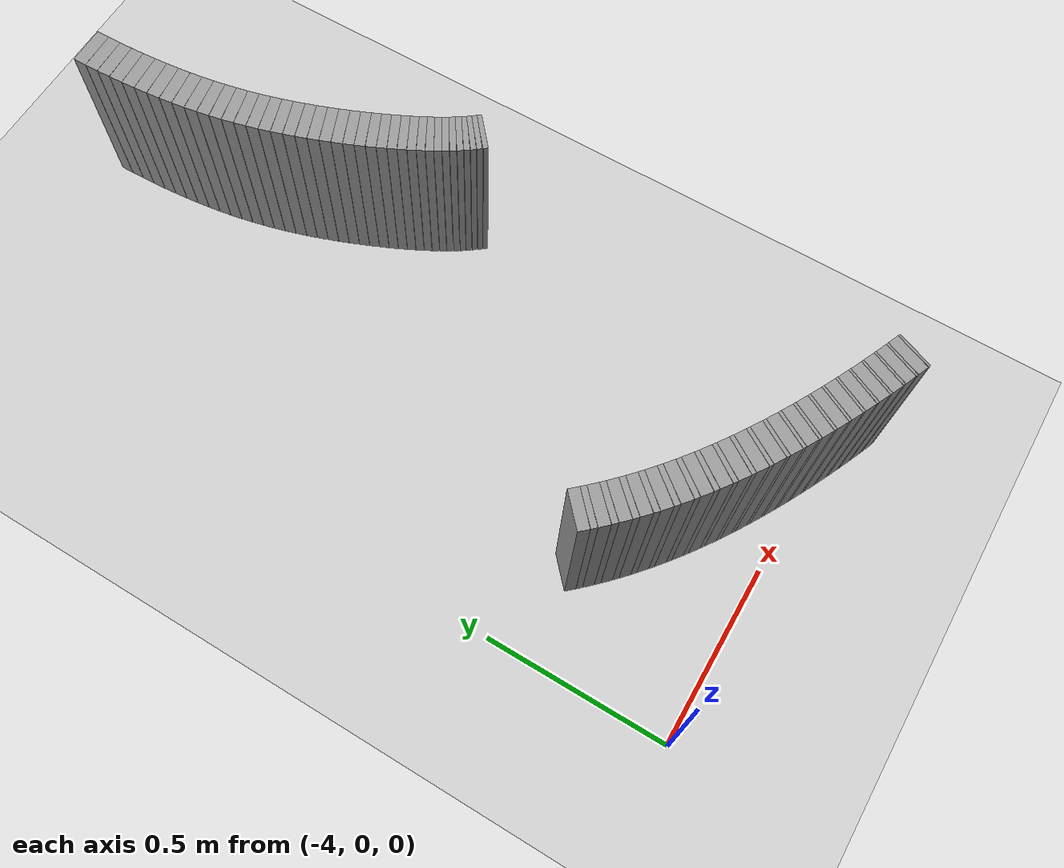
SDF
<sdf version="1.6">
 <world name="default">
  <include><uri>model://ground_plane</uri></include>
  <include><uri>model://sun</uri></include>
  <model name="wall_940_outward">
   <static>true</static>
   <link name="link">
    <collision name="collision">
     <geometry><box><size>0.035713065834833004 0.1 0.5</size></box></geometry>
    </collision>
    <visual name="visual">
     <geometry><box><size>0.035713065834833004 0.1 0.5</size></box></geometry>
     <material>
      <script><uri>file://media/materials/scripts/gazebo.material</uri><name>Gazebo/Gray</name></script>
     </material>
    </visual>
   </link>
   <pose>-3.3174626477168623 2.0877859052706045 0.25 0 0 -1.5594728835504077</pose>
  </model>
  <model name="wall_941_outward">
   <static>true</static>
   <link name="link">
    <collision name="collision">
     <geometry><box><size>0.036240384552037964 0.1 0.5</size></box></geometry>
    </collision>
    <visual name="visual">
     <geometry><box><size>0.036240384552037964 0.1 0.5</size></box></geometry>
     <material>
      <script><uri>file://media/materials/scripts/gazebo.material</uri><name>Gazebo/Gray</name></script>
     </material>
    </visual>
   </link>
   <pose>-3.3167921509803397 2.051816377350156 0.25 0 0 -1.5449491524862389</pose>
  </model>
  <model name="wall_942_outward">
   <static>true</static>
   <link name="link">
    <collision name="collision">
     <geometry><box><size>0.03648174420846806 0.1 0.5</size></box></geometry>
    </collision>
    <visual name="visual">
     <geometry><box><size>0.03648174420846806 0.1 0.5</size></box></geometry>
     <material>
      <script><uri>file://media/materials/scripts/gazebo.material</uri><name>Gazebo/Gray</name></script>
     </material>
    </visual>
   </link>
   <pose>-3.315585657191167 2.0154763085055896 0.25 0 0 -1.5303162550494724</pose>
  </model>
  <model name="wall_943_outward">
   <static>true</static>
   <link name="link">
    <collision name="collision">
     <geometry><box><size>0.036471467087948656 0.1 0.5</size></box></geometry>
    </collision>
    <visual name="visual">
     <geometry><box><size>0.036471467087948656 0.1 0.5</size></box></geometry>
     <material>
      <script><uri>file://media/materials/scripts/gazebo.material</uri><name>Gazebo/Gray</name></script>
     </material>
    </visual>
   </link>
   <pose>-3.313835239882984 1.9790427608642829 0.25 0 0 -1.5152598901087408</pose>
  </model>
  <model name="wall_944_outward">
   <static>true</static>
   <link name="link">
    <collision name="collision">
     <geometry><box><size>0.036240482483664904 0.1 0.5</size></box></geometry>
    </collision>
    <visual name="visual">
     <geometry><box><size>0.036240482483664904 0.1 0.5</size></box></geometry>
     <material>
      <script><uri>file://media/materials/scripts/gazebo.material</uri><name>Gazebo/Gray</name></script>
     </material>
    </visual>
   </link>
   <pose>-3.311531879319788 1.9427609585711425 0.25 0 0 -1.4994822398474885</pose>
  </model>
  <model name="wall_945_outward">
   <static>true</static>
   <link name="link">
    <collision name="collision">
     <geometry><box><size>0.03584313340435756 0.1 0.5</size></box></geometry>
    </collision>
    <visual name="visual">
     <geometry><box><size>0.03584313340435756 0.1 0.5</size></box></geometry>
     <material>
      <script><uri>file://media/materials/scripts/gazebo.material</uri><name>Gazebo/Gray</name></script>
     </material>
    </visual>
   </link>
   <pose>-3.3086660338647254 1.9068345247106406 0.25 0 0 -1.4828159948555926</pose>
  </model>
  <model name="wall_946_outward">
   <static>true</static>
   <link name="link">
    <collision name="collision">
     <geometry><box><size>0.035319171911052764 0.1 0.5</size></box></geometry>
    </collision>
    <visual name="visual">
     <geometry><box><size>0.035319171911052764 0.1 0.5</size></box></geometry>
     <material>
      <script><uri>file://media/materials/scripts/gazebo.material</uri><name>Gazebo/Gray</name></script>
     </material>
    </visual>
   </link>
   <pose>-3.3052296709426283 1.8714210891864154 0.25 0 0 -1.465181372135872</pose>
  </model>
  <model name="wall_947_outward">
   <static>true</static>
   <link name="link">
    <collision name="collision">
     <geometry><box><size>0.03472018694851937 0.1 0.5</size></box></geometry>
    </collision>
    <visual name="visual">
     <geometry><box><size>0.03472018694851937 0.1 0.5</size></box></geometry>
     <material>
      <script><uri>file://media/materials/scripts/gazebo.material</uri><name>Gazebo/Gray</name></script>
     </material>
    </visual>
   </link>
   <pose>-3.301216863108901 1.8366336050347665 0.25 0 0 -1.4465631030107553</pose>
  </model>
  <model name="wall_948_outward">
   <static>true</static>
   <link name="link">
    <collision name="collision">
     <geometry><box><size>0.0340914844458624 0.1 0.5</size></box></geometry>
    </collision>
    <visual name="visual">
     <geometry><box><size>0.0340914844458624 0.1 0.5</size></box></geometry>
     <material>
      <script><uri>file://media/materials/scripts/gazebo.material</uri><name>Gazebo/Gray</name></script>
     </material>
    </visual>
   </link>
   <pose>-3.2966242263376024 1.802537317998369 0.25 0 0 -1.4270709495405125</pose>
  </model>
  <model name="wall_949_outward">
   <static>true</static>
   <link name="link">
    <collision name="collision">
     <geometry><box><size>0.033474735506293256 0.1 0.5</size></box></geometry>
    </collision>
    <visual name="visual">
     <geometry><box><size>0.033474735506293256 0.1 0.5</size></box></geometry>
     <material>
      <script><uri>file://media/materials/scripts/gazebo.material</uri><name>Gazebo/Gray</name></script>
     </material>
    </visual>
   </link>
   <pose>-3.2914508808479477 1.7691544138967483 0.25 0 0 -1.40684323499818</pose>
  </model>
  <model name="wall_950_outward">
   <static>true</static>
   <link name="link">
    <collision name="collision">
     <geometry><box><size>0.032899775087950944 0.1 0.5</size></box></geometry>
    </collision>
    <visual name="visual">
     <geometry><box><size>0.032899775087950944 0.1 0.5</size></box></geometry>
     <material>
      <script><uri>file://media/materials/scripts/gazebo.material</uri><name>Gazebo/Gray</name></script>
     </material>
    </visual>
   </link>
   <pose>-3.2856984577875306 1.7364713084169656 0.25 0 0 -1.3861267222075435</pose>
  </model>
  <model name="wall_951_outward">
   <static>true</static>
   <link name="link">
    <collision name="collision">
     <geometry><box><size>0.032382602012446984 0.1 0.5</size></box></geometry>
    </collision>
    <visual name="visual">
     <geometry><box><size>0.032382602012446984 0.1 0.5</size></box></geometry>
     <material>
      <script><uri>file://media/materials/scripts/gazebo.material</uri><name>Gazebo/Gray</name></script>
     </material>
    </visual>
   </link>
   <pose>-3.2793716304655267 1.7044509828885444 0.25 0 0 -1.3651495139815777</pose>
  </model>
  <model name="wall_952_outward">
   <static>true</static>
   <link name="link">
    <collision name="collision">
     <geometry><box><size>0.03193393672221484 0.1 0.5</size></box></geometry>
    </collision>
    <visual name="visual">
     <geometry><box><size>0.03193393672221484 0.1 0.5</size></box></geometry>
     <material>
      <script><uri>file://media/materials/scripts/gazebo.material</uri><name>Gazebo/Gray</name></script>
     </material>
    </visual>
   </link>
   <pose>-3.272478087237877 1.6730420697771171 0.25 0 0 -1.3441935991269947</pose>
  </model>
  <model name="wall_953_outward">
   <static>true</static>
   <link name="link">
    <collision name="collision">
     <geometry><box><size>0.031559599935816016 0.1 0.5</size></box></geometry>
    </collision>
    <visual name="visual">
     <geometry><box><size>0.031559599935816016 0.1 0.5</size></box></geometry>
     <material>
      <script><uri>file://media/materials/scripts/gazebo.material</uri><name>Gazebo/Gray</name></script>
     </material>
    </visual>
   </link>
   <pose>-3.2650282712751952 1.642183526168773 0.25 0 0 -1.323505947292422</pose>
  </model>
  <model name="wall_954_outward">
   <static>true</static>
   <link name="link">
    <collision name="collision">
     <geometry><box><size>0.031248081231022243 0.1 0.5</size></box></geometry>
    </collision>
    <visual name="visual">
     <geometry><box><size>0.031248081231022243 0.1 0.5</size></box></geometry>
     <material>
      <script><uri>file://media/materials/scripts/gazebo.material</uri><name>Gazebo/Gray</name></script>
     </material>
    </visual>
   </link>
   <pose>-3.2570370566374467 1.6118150931988229 0.25 0 0 -1.303368852006866</pose>
  </model>
  <model name="wall_955_outward">
   <static>true</static>
   <link name="link">
    <collision name="collision">
     <geometry><box><size>0.03097180843032488 0.1 0.5</size></box></geometry>
    </collision>
    <visual name="visual">
     <geometry><box><size>0.03097180843032488 0.1 0.5</size></box></geometry>
     <material>
      <script><uri>file://media/materials/scripts/gazebo.material</uri><name>Gazebo/Gray</name></script>
     </material>
    </visual>
   </link>
   <pose>-3.2485272182489884 1.5818931909243639 0.25 0 0 -1.2839663061830866</pose>
  </model>
  <model name="wall_956_outward">
   <static>true</static>
   <link name="link">
    <collision name="collision">
     <geometry><box><size>0.03071224803492537 0.1 0.5</size></box></geometry>
    </collision>
    <visual name="visual">
     <geometry><box><size>0.03071224803492537 0.1 0.5</size></box></geometry>
     <material>
      <script><uri>file://media/materials/scripts/gazebo.material</uri><name>Gazebo/Gray</name></script>
     </material>
    </visual>
   </link>
   <pose>-3.2395297332932964 1.552394131675651 0.25 0 0 -1.2654563636468368</pose>
  </model>
  <model name="wall_957_outward">
   <static>true</static>
   <link name="link">
    <collision name="collision">
     <geometry><box><size>0.030441875940034595 0.1 0.5</size></box></geometry>
    </collision>
    <visual name="visual">
     <geometry><box><size>0.030441875940034595 0.1 0.5</size></box></geometry>
     <material>
      <script><uri>file://media/materials/scripts/gazebo.material</uri><name>Gazebo/Gray</name></script>
     </material>
    </visual>
   </link>
   <pose>-3.2300840449507335 1.523313830632064 0.25 0 0 -1.2479315242405933</pose>
  </model>
  <model name="wall_958_outward">
   <static>true</static>
   <link name="link">
    <collision name="collision">
     <geometry><box><size>0.030136966358173627 0.1 0.5</size></box></geometry>
    </collision>
    <visual name="visual">
     <geometry><box><size>0.030136966358173627 0.1 0.5</size></box></geometry>
     <material>
      <script><uri>file://media/materials/scripts/gazebo.material</uri><name>Gazebo/Gray</name></script>
     </material>
    </visual>
   </link>
   <pose>-3.220238490580973 1.4946703040079081 0.25 0 0 -1.231426985620121</pose>
  </model>
  <model name="wall_959_outward">
   <static>true</static>
   <link name="link">
    <collision name="collision">
     <geometry><box><size>0.029776355896254415 0.1 0.5</size></box></geometry>
    </collision>
    <visual name="visual">
     <geometry><box><size>0.029776355896254415 0.1 0.5</size></box></geometry>
     <material>
      <script><uri>file://media/materials/scripts/gazebo.material</uri><name>Gazebo/Gray</name></script>
     </material>
    </visual>
   </link>
   <pose>-3.2100490122727763 1.4665007794201685 0.25 0 0 -1.2159176346132907</pose>
  </model>
  <model name="wall_960_outward">
   <static>true</static>
   <link name="link">
    <collision name="collision">
     <geometry><box><size>0.029334510016836724 0.1 0.5</size></box></geometry>
    </collision>
    <visual name="visual">
     <geometry><box><size>0.029334510016836724 0.1 0.5</size></box></geometry>
     <material>
      <script><uri>file://media/materials/scripts/gazebo.material</uri><name>Gazebo/Gray</name></script>
     </material>
    </visual>
   </link>
   <pose>-3.199579126674297 1.438862786509949 0.25 0 0 -1.2013311203970907</pose>
  </model>
  <model name="wall_961_outward">
   <static>true</static>
   <link name="link">
    <collision name="collision">
     <geometry><box><size>0.02879815860608574 0.1 0.5</size></box></geometry>
    </collision>
    <visual name="visual">
     <geometry><box><size>0.02879815860608574 0.1 0.5</size></box></geometry>
     <material>
      <script><uri>file://media/materials/scripts/gazebo.material</uri><name>Gazebo/Gray</name></script>
     </material>
    </visual>
   </link>
   <pose>-3.188897659262123 1.4118309963127258 0.25 0 0 -1.1875065008744743</pose>
  </model>
  <model name="wall_962_outward">
   <static>true</static>
   <link name="link">
    <collision name="collision">
     <geometry><box><size>0.028161359366468842 0.1 0.5</size></box></geometry>
    </collision>
    <visual name="visual">
     <geometry><box><size>0.028161359366468842 0.1 0.5</size></box></geometry>
     <material>
      <script><uri>file://media/materials/scripts/gazebo.material</uri><name>Gazebo/Gray</name></script>
     </material>
    </visual>
   </link>
   <pose>-3.178074744140125 1.3854885264062482 0.25 0 0 -1.1742816825608118</pose>
  </model>
  <model name="wall_963_outward">
   <static>true</static>
   <link name="link">
    <collision name="collision">
     <geometry><box><size>0.02741608126889017 0.1 0.5</size></box></geometry>
    </collision>
    <visual name="visual">
     <geometry><box><size>0.02741608126889017 0.1 0.5</size></box></geometry>
     <material>
      <script><uri>file://media/materials/scripts/gazebo.material</uri><name>Gazebo/Gray</name></script>
     </material>
    </visual>
   </link>
   <pose>-3.167180487554563 1.3599249535297901 0.25 0 0 -1.1614274762368282</pose>
  </model>
  <model name="wall_964_outward">
   <static>true</static>
   <link name="link">
    <collision name="collision">
     <geometry><box><size>0.026570431074820693 0.1 0.5</size></box></geometry>
    </collision>
    <visual name="visual">
     <geometry><box><size>0.026570431074820693 0.1 0.5</size></box></geometry>
     <material>
      <script><uri>file://media/materials/scripts/gazebo.material</uri><name>Gazebo/Gray</name></script>
     </material>
    </visual>
   </link>
   <pose>-3.1562816847487234 1.3352303694517316 0.25 0 0 -1.1487014404483338</pose>
  </model>
  <model name="wall_965_outward">
   <static>true</static>
   <link name="link">
    <collision name="collision">
     <geometry><box><size>0.025630159137094696 0.1 0.5</size></box></geometry>
    </collision>
    <visual name="visual">
     <geometry><box><size>0.025630159137094696 0.1 0.5</size></box></geometry>
     <material>
      <script><uri>file://media/materials/scripts/gazebo.material</uri><name>Gazebo/Gray</name></script>
     </material>
    </visual>
   </link>
   <pose>-3.1454393043097166 1.3114892644049638 0.25 0 0 -1.1358490882072632</pose>
  </model>
  <model name="wall_966_outward">
   <static>true</static>
   <link name="link">
    <collision name="collision">
     <geometry><box><size>0.02460945156262165 0.1 0.5</size></box></geometry>
    </collision>
    <visual name="visual">
     <geometry><box><size>0.02460945156262165 0.1 0.5</size></box></geometry>
     <material>
      <script><uri>file://media/materials/scripts/gazebo.material</uri><name>Gazebo/Gray</name></script>
     </material>
    </visual>
   </link>
   <pose>-3.1347073458714565 1.2887779896744112 0.25 0 0 -1.1225977344094304</pose>
  </model>
  <model name="wall_967_outward">
   <static>true</static>
   <link name="link">
    <collision name="collision">
     <geometry><box><size>0.023530535063033327 0.1 0.5</size></box></geometry>
    </collision>
    <visual name="visual">
     <geometry><box><size>0.023530535063033327 0.1 0.5</size></box></geometry>
     <material>
      <script><uri>file://media/materials/scripts/gazebo.material</uri><name>Gazebo/Gray</name></script>
     </material>
    </visual>
   </link>
   <pose>-3.1241299544265573 1.2671572723337468 0.25 0 0 -1.108702773150867</pose>
  </model>
  <model name="wall_968_outward">
   <static>true</static>
   <link name="link">
    <collision name="collision">
     <geometry><box><size>0.022404891226846736 0.1 0.5</size></box></geometry>
    </collision>
    <visual name="visual">
     <geometry><box><size>0.022404891226846736 0.1 0.5</size></box></geometry>
     <material>
      <script><uri>file://media/materials/scripts/gazebo.material</uri><name>Gazebo/Gray</name></script>
     </material>
    </visual>
   </link>
   <pose>-3.1137427813015295 1.2466732859478948 0.25 0 0 -1.09392472445585</pose>
  </model>
  <model name="wall_969_outward">
   <static>true</static>
   <link name="link">
    <collision name="collision">
     <geometry><box><size>0.021259767160628343 0.1 0.5</size></box></geometry>
    </collision>
    <visual name="visual">
     <geometry><box><size>0.021259767160628343 0.1 0.5</size></box></geometry>
     <material>
      <script><uri>file://media/materials/scripts/gazebo.material</uri><name>Gazebo/Gray</name></script>
     </material>
    </visual>
   </link>
   <pose>-3.1035721215500973 1.2273554662491586 0.25 0 0 -1.0780204531955895</pose>
  </model>
  <model name="wall_970_outward">
   <static>true</static>
   <link name="link">
    <collision name="collision">
     <geometry><box><size>0.02011119775956737 0.1 0.5</size></box></geometry>
    </collision>
    <visual name="visual">
     <geometry><box><size>0.02011119775956737 0.1 0.5</size></box></geometry>
     <material>
      <script><uri>file://media/materials/scripts/gazebo.material</uri><name>Gazebo/Gray</name></script>
     </material>
    </visual>
   </link>
   <pose>-3.0936347718705353 1.209214168812386 0.25 0 0 -1.0608281377845812</pose>
  </model>
  <model name="wall_971_outward">
   <static>true</static>
   <link name="link">
    <collision name="collision">
     <geometry><box><size>0.01897227497250017 0.1 0.5</size></box></geometry>
    </collision>
    <visual name="visual">
     <geometry><box><size>0.01897227497250017 0.1 0.5</size></box></geometry>
     <material>
      <script><uri>file://media/materials/scripts/gazebo.material</uri><name>Gazebo/Gray</name></script>
     </material>
    </visual>
   </link>
   <pose>-3.083941558943198 1.1922469132556526 0.25 0 0 -1.042137479810792</pose>
  </model>
  <model name="wall_972_outward">
   <static>true</static>
   <link name="link">
    <collision name="collision">
     <geometry><box><size>0.017877207321994864 0.1 0.5</size></box></geometry>
    </collision>
    <visual name="visual">
     <geometry><box><size>0.017877207321994864 0.1 0.5</size></box></geometry>
     <material>
      <script><uri>file://media/materials/scripts/gazebo.material</uri><name>Gazebo/Gray</name></script>
     </material>
    </visual>
   </link>
   <pose>-3.074492726656727 1.1764306030110396 0.25 0 0 -1.0218247202342836</pose>
  </model>
  <model name="wall_973_outward">
   <static>true</static>
   <link name="link">
    <collision name="collision">
     <geometry><box><size>0.016836302993160725 0.1 0.5</size></box></geometry>
    </collision>
    <visual name="visual">
     <geometry><box><size>0.016836302993160725 0.1 0.5</size></box></geometry>
     <material>
      <script><uri>file://media/materials/scripts/gazebo.material</uri><name>Gazebo/Gray</name></script>
     </material>
    </visual>
   </link>
   <pose>-3.0652787569163658 1.1617226720178448 0.25 0 0 -0.9998068223284686</pose>
  </model>
  <model name="wall_974_outward">
   <static>true</static>
   <link name="link">
    <collision name="collision">
     <geometry><box><size>0.015868582134120686 0.1 0.5</size></box></geometry>
    </collision>
    <visual name="visual">
     <geometry><box><size>0.015868582134120686 0.1 0.5</size></box></geometry>
     <material>
      <script><uri>file://media/materials/scripts/gazebo.material</uri><name>Gazebo/Gray</name></script>
     </material>
    </visual>
   </link>
   <pose>-3.05628312319231 1.148068255530212 0.25 0 0 -0.9759973334895712</pose>
  </model>
  <model name="wall_975_outward">
   <static>true</static>
   <link name="link">
    <collision name="collision">
     <geometry><box><size>0.015005764908275952 0.1 0.5</size></box></geometry>
    </collision>
    <visual name="visual">
     <geometry><box><size>0.015005764908275952 0.1 0.5</size></box></geometry>
     <material>
      <script><uri>file://media/materials/scripts/gazebo.material</uri><name>Gazebo/Gray</name></script>
     </material>
    </visual>
   </link>
   <pose>-3.0474753289073684 1.1353918966603032 0.25 0 0 -0.9503971779786238</pose>
  </model>
  <model name="wall_976_outward">
   <static>true</static>
   <link name="link">
    <collision name="collision">
     <geometry><box><size>0.01427268370868644 0.1 0.5</size></box></geometry>
    </collision>
    <visual name="visual">
     <geometry><box><size>0.01427268370868644 0.1 0.5</size></box></geometry>
     <material>
      <script><uri>file://media/materials/scripts/gazebo.material</uri><name>Gazebo/Gray</name></script>
     </material>
    </visual>
   </link>
   <pose>-3.038807515972149 1.1235963084948426 0.25 0 0 -0.9230614785703035</pose>
  </model>
  <model name="wall_977_outward">
   <static>true</static>
   <link name="link">
    <collision name="collision">
     <geometry><box><size>0.013708412713271943 0.1 0.5</size></box></geometry>
    </collision>
    <visual name="visual">
     <geometry><box><size>0.013708412713271943 0.1 0.5</size></box></geometry>
     <material>
      <script><uri>file://media/materials/scripts/gazebo.material</uri><name>Gazebo/Gray</name></script>
     </material>
    </visual>
   </link>
   <pose>-3.0302093564188706 1.1125615416303911 0.25 0 0 -0.8941045089233013</pose>
  </model>
  <model name="wall_978_outward">
   <static>true</static>
   <link name="link">
    <collision name="collision">
     <geometry><box><size>0.013349824187017372 0.1 0.5</size></box></geometry>
    </collision>
    <visual name="visual">
     <geometry><box><size>0.013349824187017372 0.1 0.5</size></box></geometry>
     <material>
      <script><uri>file://media/materials/scripts/gazebo.material</uri><name>Gazebo/Gray</name></script>
     </material>
    </visual>
   </link>
   <pose>-3.0215812220222484 1.1021427980066199 0.25 0 0 -0.8637599381727994</pose>
  </model>
  <model name="wall_695_inward">
   <static>true</static>
   <link name="link">
    <collision name="collision">
     <geometry><box><size>0.02913267580452557 0.1 0.5</size></box></geometry>
    </collision>
    <visual name="visual">
     <geometry><box><size>0.02913267580452557 0.1 0.5</size></box></geometry>
     <material>
      <script><uri>file://media/materials/scripts/gazebo.material</uri><name>Gazebo/Gray</name></script>
     </material>
    </visual>
   </link>
   <pose>-3.7522217610224273 0.4189421626000307 0.25 0 0 -0.8323109407445168</pose>
  </model>
  <model name="wall_696_inward">
   <static>true</static>
   <link name="link">
    <collision name="collision">
     <geometry><box><size>0.016081182099928527 0.1 0.5</size></box></geometry>
    </collision>
    <visual name="visual">
     <geometry><box><size>0.016081182099928527 0.1 0.5</size></box></geometry>
     <material>
      <script><uri>file://media/materials/scripts/gazebo.material</uri><name>Gazebo/Gray</name></script>
     </material>
    </visual>
   </link>
   <pose>-3.736908567673236 0.4023123984440047 0.25 0 0 -0.8162290654531033</pose>
  </model>
  <model name="wall_697_inward">
   <static>true</static>
   <link name="link">
    <collision name="collision">
     <geometry><box><size>0.0295255971430993 0.1 0.5</size></box></geometry>
    </collision>
    <visual name="visual">
     <geometry><box><size>0.0295255971430993 0.1 0.5</size></box></geometry>
     <material>
      <script><uri>file://media/materials/scripts/gazebo.material</uri><name>Gazebo/Gray</name></script>
     </material>
    </visual>
   </link>
   <pose>-3.721117194324241 0.38586258363551873 0.25 0 0 -0.8001471901617287</pose>
  </model>
  <model name="wall_698_inward">
   <static>true</static>
   <link name="link">
    <collision name="collision">
     <geometry><box><size>0.01620422643035932 0.1 0.5</size></box></geometry>
    </collision>
    <visual name="visual">
     <geometry><box><size>0.01620422643035932 0.1 0.5</size></box></geometry>
     <material>
      <script><uri>file://media/materials/scripts/gazebo.material</uri><name>Gazebo/Gray</name></script>
     </material>
    </visual>
   </link>
   <pose>-3.7050960182831103 0.3695501742359878 0.25 0 0 -0.7839422545048239</pose>
  </model>
  <model name="wall_699_inward">
   <static>true</static>
   <link name="link">
    <collision name="collision">
     <geometry><box><size>0.029966364504027936 0.1 0.5</size></box></geometry>
    </collision>
    <visual name="visual">
     <geometry><box><size>0.029966364504027936 0.1 0.5</size></box></geometry>
     <material>
      <script><uri>file://media/materials/scripts/gazebo.material</uri><name>Gazebo/Gray</name></script>
     </material>
    </visual>
   </link>
   <pose>-3.688578464834276 0.3534235063490619 0.25 0 0 -0.7677373188479262</pose>
  </model>
  <model name="wall_700_inward">
   <static>true</static>
   <link name="link">
    <collision name="collision">
     <geometry><box><size>0.01610559721805691 0.1 0.5</size></box></geometry>
    </collision>
    <visual name="visual">
     <geometry><box><size>0.01610559721805691 0.1 0.5</size></box></geometry>
     <material>
      <script><uri>file://media/materials/scripts/gazebo.material</uri><name>Gazebo/Gray</name></script>
     </material>
    </visual>
   </link>
   <pose>-3.671915123083336 0.3375188480139074 0.25 0 0 -0.7516310252760767</pose>
  </model>
  <model name="wall_701_inward">
   <static>true</static>
   <link name="link">
    <collision name="collision">
     <geometry><box><size>0.03044217845376283 0.1 0.5</size></box></geometry>
    </collision>
    <visual name="visual">
     <geometry><box><size>0.03044217845376283 0.1 0.5</size></box></geometry>
     <material>
      <script><uri>file://media/materials/scripts/gazebo.material</uri><name>Gazebo/Gray</name></script>
     </material>
    </visual>
   </link>
   <pose>-3.6547458261085235 0.32180715490816486 0.25 0 0 -0.7355247317042154</pose>
  </model>
  <model name="wall_702_inward">
   <static>true</static>
   <link name="link">
    <collision name="collision">
     <geometry><box><size>0.015758410521345547 0.1 0.5</size></box></geometry>
    </collision>
    <visual name="visual">
     <geometry><box><size>0.015758410521345547 0.1 0.5</size></box></geometry>
     <material>
      <script><uri>file://media/materials/scripts/gazebo.material</uri><name>Gazebo/Gray</name></script>
     </material>
    </visual>
   </link>
   <pose>-3.6375348626020805 0.3064001254474382 0.25 0 0 -0.7197656689021932</pose>
  </model>
  <model name="wall_703_inward">
   <static>true</static>
   <link name="link">
    <collision name="collision">
     <geometry><box><size>0.03093448144338571 0.1 0.5</size></box></geometry>
    </collision>
    <visual name="visual">
     <geometry><box><size>0.03093448144338571 0.1 0.5</size></box></geometry>
     <material>
      <script><uri>file://media/materials/scripts/gazebo.material</uri><name>Gazebo/Gray</name></script>
     </material>
    </visual>
   </link>
   <pose>-3.6198200331847414 0.2911944984206264 0.25 0 0 -0.7040066061001635</pose>
  </model>
  <model name="wall_704_inward">
   <static>true</static>
   <link name="link">
    <collision name="collision">
     <geometry><box><size>0.015198808346410367 0.1 0.5</size></box></geometry>
    </collision>
    <visual name="visual">
     <geometry><box><size>0.015198808346410367 0.1 0.5</size></box></geometry>
     <material>
      <script><uri>file://media/materials/scripts/gazebo.material</uri><name>Gazebo/Gray</name></script>
     </material>
    </visual>
   </link>
   <pose>-3.6021632768219516 0.2763526013962755 0.25 0 0 -0.6888072125292304</pose>
  </model>
  <model name="wall_705_inward">
   <static>true</static>
   <link name="link">
    <collision name="collision">
     <geometry><box><size>0.03142386912932498 0.1 0.5</size></box></geometry>
    </collision>
    <visual name="visual">
     <geometry><box><size>0.03142386912932498 0.1 0.5</size></box></geometry>
     <material>
      <script><uri>file://media/materials/scripts/gazebo.material</uri><name>Gazebo/Gray</name></script>
     </material>
    </visual>
   </link>
   <pose>-3.5840164273793613 0.2617210332880398 0.25 0 0 -0.6736078189583001</pose>
  </model>
  <model name="wall_706_inward">
   <static>true</static>
   <link name="link">
    <collision name="collision">
     <geometry><box><size>0.014449469737831244 0.1 0.5</size></box></geometry>
    </collision>
    <visual name="visual">
     <geometry><box><size>0.014449469737831244 0.1 0.5</size></box></geometry>
     <material>
      <script><uri>file://media/materials/scripts/gazebo.material</uri><name>Gazebo/Gray</name></script>
     </material>
    </visual>
   </link>
   <pose>-3.566025141019693 0.24749497556962258 0.25 0 0 -0.6591578463625604</pose>
  </model>
  <model name="wall_707_inward">
   <static>true</static>
   <link name="link">
    <collision name="collision">
     <geometry><box><size>0.03188921126198171 0.1 0.5</size></box></geometry>
    </collision>
    <visual name="visual">
     <geometry><box><size>0.03188921126198171 0.1 0.5</size></box></geometry>
     <material>
      <script><uri>file://media/materials/scripts/gazebo.material</uri><name>Gazebo/Gray</name></script>
     </material>
    </visual>
   </link>
   <pose>-3.547569797828902 0.233488027497255 0.25 0 0 -0.6447078737668175</pose>
  </model>
  <model name="wall_708_inward">
   <static>true</static>
   <link name="link">
    <collision name="collision">
     <geometry><box><size>0.013568526644051426 0.1 0.5</size></box></geometry>
    </collision>
    <visual name="visual">
     <geometry><box><size>0.013568526644051426 0.1 0.5</size></box></geometry>
     <material>
      <script><uri>file://media/materials/scripts/gazebo.material</uri><name>Gazebo/Gray</name></script>
     </material>
    </visual>
   </link>
   <pose>-3.529348351818138 0.21990272392418714 0.25 0 0 -0.631138930749524</pose>
  </model>
  <model name="wall_709_inward">
   <static>true</static>
   <link name="link">
    <collision name="collision">
     <geometry><box><size>0.03231043999297099 0.1 0.5</size></box></geometry>
    </collision>
    <visual name="visual">
     <geometry><box><size>0.03231043999297099 0.1 0.5</size></box></geometry>
     <material>
      <script><uri>file://media/materials/scripts/gazebo.material</uri><name>Gazebo/Gray</name></script>
     </material>
    </visual>
   </link>
   <pose>-3.5106998795973636 0.20654479744997123 0.25 0 0 -0.6175699877322394</pose>
  </model>
  <model name="wall_710_inward">
   <static>true</static>
   <link name="link">
    <collision name="collision">
     <geometry><box><size>0.012611878791706298 0.1 0.5</size></box></geometry>
    </collision>
    <visual name="visual">
     <geometry><box><size>0.012611878791706298 0.1 0.5</size></box></geometry>
     <material>
      <script><uri>file://media/materials/scripts/gazebo.material</uri><name>Gazebo/Gray</name></script>
     </material>
    </visual>
   </link>
   <pose>-3.4923419231818147 0.19360366485471345 0.25 0 0 -0.6049577745767761</pose>
  </model>
  <model name="wall_711_inward">
   <static>true</static>
   <link name="link">
    <collision name="collision">
     <geometry><box><size>0.0326657606209998 0.1 0.5</size></box></geometry>
    </collision>
    <visual name="visual">
     <geometry><box><size>0.0326657606209998 0.1 0.5</size></box></geometry>
     <material>
      <script><uri>file://media/materials/scripts/gazebo.material</uri><name>Gazebo/Gray</name></script>
     </material>
    </visual>
   </link>
   <pose>-3.4736048200828824 0.18089851856243938 0.25 0 0 -0.5923455614213048</pose>
  </model>
  <model name="wall_712_inward">
   <static>true</static>
   <link name="link">
    <collision name="collision">
     <geometry><box><size>0.011604085846141893 0.1 0.5</size></box></geometry>
    </collision>
    <visual name="visual">
     <geometry><box><size>0.011604085846141893 0.1 0.5</size></box></geometry>
     <material>
      <script><uri>file://media/materials/scripts/gazebo.material</uri><name>Gazebo/Gray</name></script>
     </material>
    </visual>
   </link>
   <pose>-3.4552036827503176 0.16859647765222702 0.25 0 0 -0.5807412151350535</pose>
  </model>
  <model name="wall_713_inward">
   <static>true</static>
   <link name="link">
    <collision name="collision">
     <geometry><box><size>0.032938440386883365 0.1 0.5</size></box></geometry>
    </collision>
    <visual name="visual">
     <geometry><box><size>0.032938440386883365 0.1 0.5</size></box></geometry>
     <material>
      <script><uri>file://media/materials/scripts/gazebo.material</uri><name>Gazebo/Gray</name></script>
     </material>
    </visual>
   </link>
   <pose>-3.436479730398725 0.15653787484135623 0.25 0 0 -0.569136868848806</pose>
  </model>
  <model name="wall_714_inward">
   <static>true</static>
   <link name="link">
    <collision name="collision">
     <geometry><box><size>0.010644059808922357 0.1 0.5</size></box></geometry>
    </collision>
    <visual name="visual">
     <geometry><box><size>0.010644059808922357 0.1 0.5</size></box></geometry>
     <material>
      <script><uri>file://media/materials/scripts/gazebo.material</uri><name>Gazebo/Gray</name></script>
     </material>
    </visual>
   </link>
   <pose>-3.4180932388083356 0.14484233820615297 0.25 0 0 -0.5584926080413803</pose>
  </model>
  <model name="wall_715_inward">
   <static>true</static>
   <link name="link">
    <collision name="collision">
     <geometry><box><size>0.03311695949274803 0.1 0.5</size></box></geometry>
    </collision>
    <visual name="visual">
     <geometry><box><size>0.03311695949274803 0.1 0.5</size></box></geometry>
     <material>
      <script><uri>file://media/materials/scripts/gazebo.material</uri><name>Gazebo/Gray</name></script>
     </material>
    </visual>
   </link>
   <pose>-3.39944476582238 0.1333976375368478 0.25 0 0 -0.5478483472339741</pose>
  </model>
  <model name="wall_716_inward">
   <static>true</static>
   <link name="link">
    <collision name="collision">
     <geometry><box><size>0.009740445278068692 0.1 0.5</size></box></geometry>
    </collision>
    <visual name="visual">
     <geometry><box><size>0.009740445278068692 0.1 0.5</size></box></geometry>
     <material>
      <script><uri>file://media/materials/scripts/gazebo.material</uri><name>Gazebo/Gray</name></script>
     </material>
    </visual>
   </link>
   <pose>-3.3811277032560283 0.12227707759015119 0.25 0 0 -0.5381077479264355</pose>
  </model>
  <model name="wall_717_inward">
   <static>true</static>
   <link name="link">
    <collision name="collision">
     <geometry><box><size>0.03319450766558026 0.1 0.5</size></box></geometry>
    </collision>
    <visual name="visual">
     <geometry><box><size>0.03319450766558026 0.1 0.5</size></box></geometry>
     <material>
      <script><uri>file://media/materials/scripts/gazebo.material</uri><name>Gazebo/Gray</name></script>
     </material>
    </visual>
   </link>
   <pose>-3.362611831138052 0.11141395849259522 0.25 0 0 -0.5283671486189584</pose>
  </model>
  <model name="wall_718_inward">
   <static>true</static>
   <link name="link">
    <collision name="collision">
     <geometry><box><size>0.008928584023344207 0.1 0.5</size></box></geometry>
    </collision>
    <visual name="visual">
     <geometry><box><size>0.008928584023344207 0.1 0.5</size></box></geometry>
     <material>
      <script><uri>file://media/materials/scripts/gazebo.material</uri><name>Gazebo/Gray</name></script>
     </material>
    </visual>
   </link>
   <pose>-3.3444024786239437 0.10083084517779581 0.25 0 0 -0.5194384459608213</pose>
  </model>
  <model name="wall_719_inward">
   <static>true</static>
   <link name="link">
    <collision name="collision">
     <geometry><box><size>0.033173405002706595 0.1 0.5</size></box></geometry>
    </collision>
    <visual name="visual">
     <geometry><box><size>0.033173405002706595 0.1 0.5</size></box></geometry>
     <material>
      <script><uri>file://media/materials/scripts/gazebo.material</uri><name>Gazebo/Gray</name></script>
     </material>
    </visual>
   </link>
   <pose>-3.3260552112460147 0.09051017433894248 0.25 0 0 -0.5105097433026713</pose>
  </model>
  <model name="wall_720_inward">
   <static>true</static>
   <link name="link">
    <collision name="collision">
     <geometry><box><size>0.00824647910767189 0.1 0.5</size></box></geometry>
    </collision>
    <visual name="visual">
     <geometry><box><size>0.00824647910767189 0.1 0.5</size></box></geometry>
     <material>
      <script><uri>file://media/materials/scripts/gazebo.material</uri><name>Gazebo/Gray</name></script>
     </material>
    </visual>
   </link>
   <pose>-3.3079693870749236 0.08042057508941722 0.25 0 0 -0.5022631707259866</pose>
  </model>
  <model name="wall_721_inward">
   <static>true</static>
   <link name="link">
    <collision name="collision">
     <geometry><box><size>0.033060198694350944 0.1 0.5</size></box></geometry>
    </collision>
    <visual name="visual">
     <geometry><box><size>0.033060198694350944 0.1 0.5</size></box></geometry>
     <material>
      <script><uri>file://media/materials/scripts/gazebo.material</uri><name>Gazebo/Gray</name></script>
     </material>
    </visual>
   </link>
   <pose>-3.289801701864368 0.07059759250996345 0.25 0 0 -0.4940165981492702</pose>
  </model>
  <model name="wall_722_inward">
   <static>true</static>
   <link name="link">
    <collision name="collision">
     <geometry><box><size>0.007695777916909807 0.1 0.5</size></box></geometry>
    </collision>
    <visual name="visual">
     <geometry><box><size>0.007695777916909807 0.1 0.5</size></box></geometry>
     <material>
      <script><uri>file://media/materials/scripts/gazebo.material</uri><name>Gazebo/Gray</name></script>
     </material>
    </visual>
   </link>
   <pose>-3.2718462580235137 0.06096116803082505 0.25 0 0 -0.4863207442665841</pose>
  </model>
  <model name="wall_723_inward">
   <static>true</static>
   <link name="link">
    <collision name="collision">
     <geometry><box><size>0.03286968424276933 0.1 0.5</size></box></geometry>
    </collision>
    <visual name="visual">
     <geometry><box><size>0.03286968424276933 0.1 0.5</size></box></geometry>
     <material>
      <script><uri>file://media/materials/scripts/gazebo.material</uri><name>Gazebo/Gray</name></script>
     </material>
    </visual>
   </link>
   <pose>-3.253856455522616 0.05159354076325187 0.25 0 0 -0.478624890383925</pose>
  </model>
  <model name="wall_724_inward">
   <static>true</static>
   <link name="link">
    <collision name="collision">
     <geometry><box><size>0.007292152187968348 0.1 0.5</size></box></geometry>
    </collision>
    <visual name="visual">
     <geometry><box><size>0.007292152187968348 0.1 0.5</size></box></geometry>
     <material>
      <script><uri>file://media/materials/scripts/gazebo.material</uri><name>Gazebo/Gray</name></script>
     </material>
    </visual>
   </link>
   <pose>-3.2360198893669483 0.04236873736769298 0.25 0 0 -0.47133267356711495</pose>
  </model>
  <model name="wall_725_inward">
   <static>true</static>
   <link name="link">
    <collision name="collision">
     <geometry><box><size>0.03262273374601294 0.1 0.5</size></box></geometry>
    </collision>
    <visual name="visual">
     <geometry><box><size>0.03262273374601294 0.1 0.5</size></box></geometry>
     <material>
      <script><uri>file://media/materials/scripts/gazebo.material</uri><name>Gazebo/Gray</name></script>
     </material>
    </visual>
   </link>
   <pose>-3.218184903783783 0.03341275297128038 0.25 0 0 -0.4640404567503226</pose>
  </model>
  <model name="wall_726_inward">
   <static>true</static>
   <link name="link">
    <collision name="collision">
     <geometry><box><size>0.007007666988394261 0.1 0.5</size></box></geometry>
    </collision>
    <visual name="visual">
     <geometry><box><size>0.007007666988394261 0.1 0.5</size></box></geometry>
     <material>
      <script><uri>file://media/materials/scripts/gazebo.material</uri><name>Gazebo/Gray</name></script>
     </material>
    </visual>
   </link>
   <pose>-3.2004542199788553 0.02456615979840779 0.25 0 0 -0.4570327324059553</pose>
  </model>
  <model name="wall_727_inward">
   <static>true</static>
   <link name="link">
    <collision name="collision">
     <geometry><box><size>0.03234167193052173 0.1 0.5</size></box></geometry>
    </collision>
    <visual name="visual">
     <geometry><box><size>0.03234167193052173 0.1 0.5</size></box></geometry>
     <material>
      <script><uri>file://media/materials/scripts/gazebo.material</uri><name>Gazebo/Gray</name></script>
     </material>
    </visual>
   </link>
   <pose>-3.182749192926698 0.015985842032372577 0.25 0 0 -0.4500250080615718</pose>
  </model>
  <model name="wall_728_inward">
   <static>true</static>
   <link name="link">
    <collision name="collision">
     <geometry><box><size>0.006842020764289211 0.1 0.5</size></box></geometry>
    </collision>
    <visual name="visual">
     <geometry><box><size>0.006842020764289211 0.1 0.5</size></box></geometry>
     <material>
      <script><uri>file://media/materials/scripts/gazebo.material</uri><name>Gazebo/Gray</name></script>
     </material>
    </visual>
   </link>
   <pose>-3.165097875272931 0.007484733950540473 0.25 0 0 -0.44318293391328806</pose>
  </model>
  <model name="wall_729_inward">
   <static>true</static>
   <link name="link">
    <collision name="collision">
     <geometry><box><size>0.0320525444286735 0.1 0.5</size></box></geometry>
    </collision>
    <visual name="visual">
     <geometry><box><size>0.0320525444286735 0.1 0.5</size></box></geometry>
     <material>
      <script><uri>file://media/materials/scripts/gazebo.material</uri><name>Gazebo/Gray</name></script>
     </material>
    </visual>
   </link>
   <pose>-3.147482686684257 -0.0007553731335711578 0.25 0 0 -0.43634085976500536</pose>
  </model>
  <model name="wall_730_inward">
   <static>true</static>
   <link name="link">
    <collision name="collision">
     <geometry><box><size>0.006757128046371568 0.1 0.5</size></box></geometry>
    </collision>
    <visual name="visual">
     <geometry><box><size>0.006757128046371568 0.1 0.5</size></box></geometry>
     <material>
      <script><uri>file://media/materials/scripts/gazebo.material</uri><name>Gazebo/Gray</name></script>
     </material>
    </visual>
   </link>
   <pose>-3.129886424198016 -0.008935638634252674 0.25 0 0 -0.42958368029721333</pose>
  </model>
  <model name="wall_731_inward">
   <static>true</static>
   <link name="link">
    <collision name="collision">
     <geometry><box><size>0.03177940189254035 0.1 0.5</size></box></geometry>
    </collision>
    <visual name="visual">
     <geometry><box><size>0.03177940189254035 0.1 0.5</size></box></geometry>
     <material>
      <script><uri>file://media/materials/scripts/gazebo.material</uri><name>Gazebo/Gray</name></script>
     </material>
    </visual>
   </link>
   <pose>-3.112324500302137 -0.01686295929243406 0.25 0 0 -0.42282650082940926</pose>
  </model>
  <model name="wall_732_inward">
   <static>true</static>
   <link name="link">
    <collision name="collision">
     <geometry><box><size>0.006696143364794774 0.1 0.5</size></box></geometry>
    </collision>
    <visual name="visual">
     <geometry><box><size>0.006696143364794774 0.1 0.5</size></box></geometry>
     <material>
      <script><uri>file://media/materials/scripts/gazebo.material</uri><name>Gazebo/Gray</name></script>
     </material>
    </visual>
   </link>
   <pose>-3.094771814205262 -0.024736504940808396 0.25 0 0 -0.41613030742294344</pose>
  </model>
  <model name="wall_733_inward">
   <static>true</static>
   <link name="link">
    <collision name="collision">
     <geometry><box><size>0.03154463084573826 0.1 0.5</size></box></geometry>
    </collision>
    <visual name="visual">
     <geometry><box><size>0.03154463084573826 0.1 0.5</size></box></geometry>
     <material>
      <script><uri>file://media/materials/scripts/gazebo.material</uri><name>Gazebo/Gray</name></script>
     </material>
    </visual>
   </link>
   <pose>-3.0772407926325336 -0.032368681424242596 0.25 0 0 -0.40943411401649205</pose>
  </model>
  <model name="wall_734_inward">
   <static>true</static>
   <link name="link">
    <collision name="collision">
     <geometry><box><size>0.006631666543445703 0.1 0.5</size></box></geometry>
    </collision>
    <visual name="visual">
     <geometry><box><size>0.006631666543445703 0.1 0.5</size></box></geometry>
     <material>
      <script><uri>file://media/materials/scripts/gazebo.material</uri><name>Gazebo/Gray</name></script>
     </material>
    </visual>
   </link>
   <pose>-3.0597216642155 -0.03994728683942661 0.25 0 0 -0.40280239886307756</pose>
  </model>
  <model name="wall_735_inward">
   <static>true</static>
   <link name="link">
    <collision name="collision">
     <geometry><box><size>0.03136593466196942 0.1 0.5</size></box></geometry>
    </collision>
    <visual name="visual">
     <geometry><box><size>0.03136593466196942 0.1 0.5</size></box></geometry>
     <material>
      <script><uri>file://media/materials/scripts/gazebo.material</uri><name>Gazebo/Gray</name></script>
     </material>
    </visual>
   </link>
   <pose>-3.0422029600525473 -0.04729896295896613 0.25 0 0 -0.3961706837096529</pose>
  </model>
  <model name="wall_736_inward">
   <static>true</static>
   <link name="link">
    <collision name="collision">
     <geometry><box><size>0.0065304930021131075 0.1 0.5</size></box></geometry>
    </collision>
    <visual name="visual">
     <geometry><box><size>0.0065304930021131075 0.1 0.5</size></box></geometry>
     <material>
      <script><uri>file://media/materials/scripts/gazebo.material</uri><name>Gazebo/Gray</name></script>
     </material>
    </visual>
   </link>
   <pose>-3.024714207399831 -0.054591161128002 0.25 0 0 -0.3896401442886121</pose>
  </model>
 </world>
</sdf>
